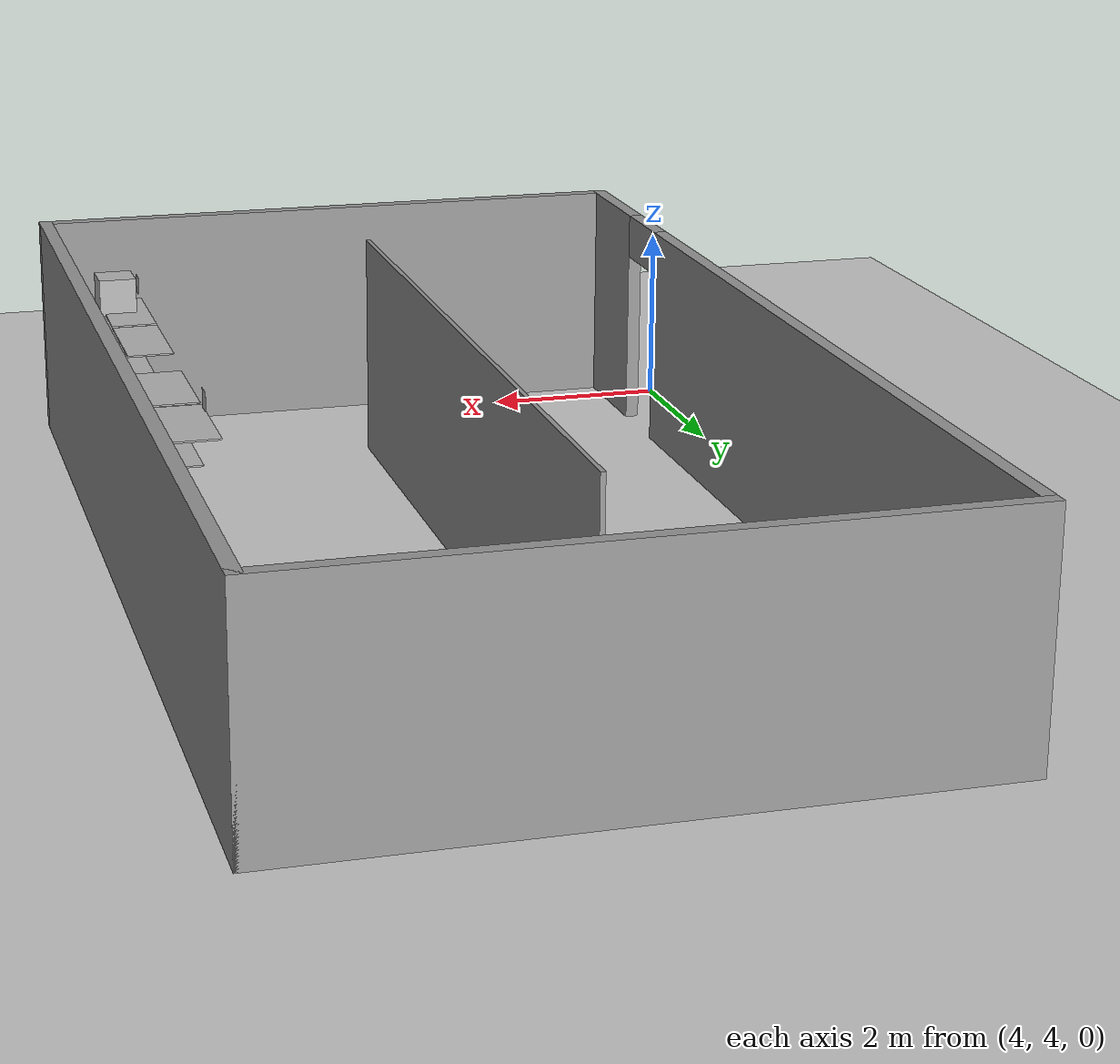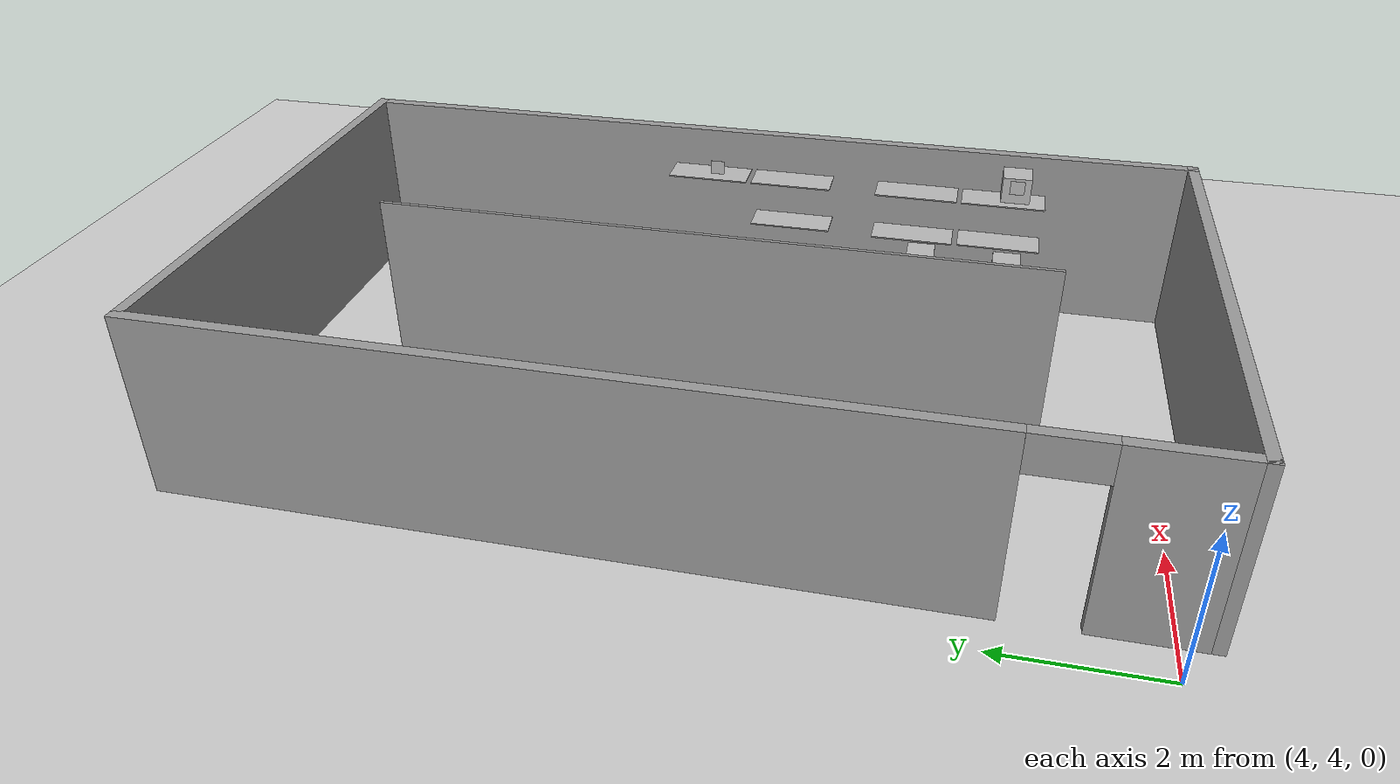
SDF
<sdf version="1.6">
 <world name="default">
  <model name="ground_plane">
   <static>1</static>
   <link name="link">
    <collision name="collision">
     <geometry><plane><normal>0 0 1</normal><size>300 300</size></plane></geometry>
     <surface>
      <contact><collide_bitmask>65535</collide_bitmask></contact>
      <friction><ode><mu>100</mu><mu2>50</mu2></ode></friction>
     </surface>
    </collision>
    <visual name="visual">
     <geometry><plane><normal>0 0 1</normal><size>100 100</size></plane></geometry>
     <material>
      <script><uri>file://media/materials/scripts/gazebo.material</uri><name>Gazebo/Grey</name></script>
     </material>
    </visual>
   </link>
  </model>
  <model name="Plano12">
   <link name="link">
    <gravity>0</gravity>
    <pose>-0.824351 -0.041274 1.91889 0 -0 0.02962</pose>
    <inertial>
     <mass>1e-06</mass>
     <inertia><ixx>0.00058</ixx><ixy>0</ixy><ixz>0</ixz><iyy>0.00058</iyy><iyz>0</iyz><izz>0.00019</izz></inertia>
    </inertial>
    <visual name="visual">
     <geometry><box><size>0.2 1e-06 0.2</size></box></geometry>
     <material>
      <script>
       <uri>model://Plano12/materials/scripts</uri>
       <uri>model://Plano12/materials/textures</uri>
       <name>Plano12/Diffuse</name>
      </script>
      <shader type="pixel"/>
     </material>
     <cast_shadows>0</cast_shadows>
    </visual>
    <collision name="collision">
     <geometry><box><size>0.2 1e-06 0.2</size></box></geometry>
     <surface>
      <friction>
       <ode><mu>1</mu><mu2>1</mu2><fdir1>0 0 0</fdir1><slip1>0</slip1><slip2>0</slip2></ode>
       <torsional>
        <coefficient>1</coefficient>
        <patch_radius>0</patch_radius>
        <surface_radius>0</surface_radius>
        <use_patch_radius>1</use_patch_radius>
        <ode><slip>0</slip></ode>
       </torsional>
      </friction>
      <bounce><restitution_coefficient>0</restitution_coefficient><threshold>1e+06</threshold></bounce>
      <contact>
       <collide_without_contact>0</collide_without_contact>
       <collide_without_contact_bitmask>1</collide_without_contact_bitmask>
       <collide_bitmask>1</collide_bitmask>
       <ode>
        <soft_cfm>0</soft_cfm>
        <soft_erp>0.2</soft_erp>
        <kp>1e+13</kp>
        <kd>1</kd>
        <max_vel>0.01</max_vel>
        <min_depth>0</min_depth>
       </ode>
       <bullet>
        <split_impulse>1</split_impulse>
        <split_impulse_penetration_threshold>-0.01</split_impulse_penetration_threshold>
        <soft_cfm>0</soft_cfm>
        <soft_erp>0.2</soft_erp>
        <kp>1e+13</kp>
        <kd>1</kd>
       </bullet>
      </contact>
     </surface>
    </collision>
   </link>
   <static>0</static>
   <pose>10.7037 9.47205 0.27256 0 0 -1.59709</pose>
  </model>
  <model name="Plano26_0">
   <link name="link">
    <gravity>0</gravity>
    <pose>-0.169184 -0.069468 -0.055235 0 -0 0.01407</pose>
    <inertial>
     <mass>1e-06</mass>
     <inertia><ixx>0.00058</ixx><ixy>0</ixy><ixz>0</ixz><iyy>0.00058</iyy><iyz>0</iyz><izz>0.00019</izz></inertia>
    </inertial>
    <visual name="visual">
     <geometry><box><size>0.2 1e-06 0.2</size></box></geometry>
     <material>
      <script>
       <uri>model://Plano26/materials/scripts</uri>
       <uri>model://Plano26/materials/textures</uri>
       <name>Plano26/Diffuse</name>
      </script>
      <shader type="pixel"/>
     </material>
     <cast_shadows>0</cast_shadows>
    </visual>
    <collision name="collision">
     <geometry><box><size>0.2 1e-06 0.2</size></box></geometry>
     <surface>
      <friction>
       <ode><mu>1</mu><mu2>1</mu2><fdir1>0 0 0</fdir1><slip1>0</slip1><slip2>0</slip2></ode>
       <torsional>
        <coefficient>1</coefficient>
        <patch_radius>0</patch_radius>
        <surface_radius>0</surface_radius>
        <use_patch_radius>1</use_patch_radius>
        <ode><slip>0</slip></ode>
       </torsional>
      </friction>
      <bounce><restitution_coefficient>0</restitution_coefficient><threshold>1e+06</threshold></bounce>
      <contact>
       <collide_without_contact>0</collide_without_contact>
       <collide_without_contact_bitmask>1</collide_without_contact_bitmask>
       <collide_bitmask>1</collide_bitmask>
       <ode>
        <soft_cfm>0</soft_cfm>
        <soft_erp>0.2</soft_erp>
        <kp>1e+13</kp>
        <kd>1</kd>
        <max_vel>0.01</max_vel>
        <min_depth>0</min_depth>
       </ode>
       <bullet>
        <split_impulse>1</split_impulse>
        <split_impulse_penetration_threshold>-0.01</split_impulse_penetration_threshold>
        <soft_cfm>0</soft_cfm>
        <soft_erp>0.2</soft_erp>
        <kp>1e+13</kp>
        <kd>1</kd>
       </bullet>
      </contact>
     </surface>
    </collision>
   </link>
   <static>0</static>
   <pose>10.7205 7.06672 0.90647 0 0 -1.58759</pose>
  </model>
  <model name="Plano26">
   <link name="link">
    <gravity>0</gravity>
    <pose>0.070412 -0.023465 0.724825 0 -0 0</pose>
    <inertial>
     <mass>1e-06</mass>
     <inertia><ixx>0.00058</ixx><ixy>0</ixy><ixz>0</ixz><iyy>0.00058</iyy><iyz>0</iyz><izz>0.00019</izz></inertia>
    </inertial>
    <visual name="visual">
     <geometry><box><size>0.2 1e-06 0.2</size></box></geometry>
     <material>
      <script>
       <uri>model://Plano26/materials/scripts</uri>
       <uri>model://Plano26/materials/textures</uri>
       <name>Plano26/Diffuse</name>
      </script>
      <shader type="pixel"/>
     </material>
     <cast_shadows>0</cast_shadows>
    </visual>
    <collision name="collision">
     <geometry><box><size>0.2 1e-06 0.2</size></box></geometry>
     <surface>
      <friction>
       <ode><mu>1</mu><mu2>1</mu2><fdir1>0 0 0</fdir1><slip1>0</slip1><slip2>0</slip2></ode>
       <torsional>
        <coefficient>1</coefficient>
        <patch_radius>0</patch_radius>
        <surface_radius>0</surface_radius>
        <use_patch_radius>1</use_patch_radius>
        <ode><slip>0</slip></ode>
       </torsional>
      </friction>
      <bounce><restitution_coefficient>0</restitution_coefficient><threshold>1e+06</threshold></bounce>
      <contact>
       <collide_without_contact>0</collide_without_contact>
       <collide_without_contact_bitmask>1</collide_without_contact_bitmask>
       <collide_bitmask>1</collide_bitmask>
       <ode>
        <soft_cfm>0</soft_cfm>
        <soft_erp>0.2</soft_erp>
        <kp>1e+13</kp>
        <kd>1</kd>
        <max_vel>0.01</max_vel>
        <min_depth>0</min_depth>
       </ode>
       <bullet>
        <split_impulse>1</split_impulse>
        <split_impulse_penetration_threshold>-0.01</split_impulse_penetration_threshold>
        <soft_cfm>0</soft_cfm>
        <soft_erp>0.2</soft_erp>
        <kp>1e+13</kp>
        <kd>1</kd>
       </bullet>
      </contact>
     </surface>
    </collision>
   </link>
   <static>0</static>
   <pose>10.7123 6.04698 1.56042 0 0 -1.57945</pose>
  </model>
  <model name="Plano20">
   <link name="link">
    <gravity>0</gravity>
    <pose>0.632324 -0.065211 0.597871 0 -0 0</pose>
    <inertial>
     <mass>1e-06</mass>
     <inertia><ixx>0.00058</ixx><ixy>0</ixy><ixz>0</ixz><iyy>0.00058</iyy><iyz>0</iyz><izz>0.00019</izz></inertia>
    </inertial>
    <visual name="visual">
     <geometry><box><size>0.2 1e-06 0.2</size></box></geometry>
     <material>
      <script>
       <uri>model://Plano20/materials/scripts</uri>
       <uri>model://Plano20/materials/textures</uri>
       <name>Plano20/Diffuse</name>
      </script>
      <shader type="pixel"/>
     </material>
     <cast_shadows>0</cast_shadows>
    </visual>
    <collision name="collision">
     <geometry><box><size>0.2 1e-06 0.2</size></box></geometry>
     <surface>
      <friction>
       <ode><mu>1</mu><mu2>1</mu2><fdir1>0 0 0</fdir1><slip1>0</slip1><slip2>0</slip2></ode>
       <torsional>
        <coefficient>1</coefficient>
        <patch_radius>0</patch_radius>
        <surface_radius>0</surface_radius>
        <use_patch_radius>1</use_patch_radius>
        <ode><slip>0</slip></ode>
       </torsional>
      </friction>
      <bounce><restitution_coefficient>0</restitution_coefficient><threshold>1e+06</threshold></bounce>
      <contact>
       <collide_without_contact>0</collide_without_contact>
       <collide_without_contact_bitmask>1</collide_without_contact_bitmask>
       <collide_bitmask>1</collide_bitmask>
       <ode>
        <soft_cfm>0</soft_cfm>
        <soft_erp>0.2</soft_erp>
        <kp>1e+13</kp>
        <kd>1</kd>
        <max_vel>0.01</max_vel>
        <min_depth>0</min_depth>
       </ode>
       <bullet>
        <split_impulse>1</split_impulse>
        <split_impulse_penetration_threshold>-0.01</split_impulse_penetration_threshold>
        <soft_cfm>0</soft_cfm>
        <soft_erp>0.2</soft_erp>
        <kp>1e+13</kp>
        <kd>1</kd>
       </bullet>
      </contact>
     </surface>
    </collision>
   </link>
   <static>0</static>
   <pose>10.7236 6.60015 0.262989 0 0 -1.59313</pose>
  </model>
  <model name="Untitled_0">
   <link name="Wall_2">
    <pose>-3.33081 4.20959 0 0 0 -1.5708</pose>
    <visual name="Wall_2_Visual">
     <pose>0 0 1.25 0 -0 0</pose>
     <geometry><box><size>8.89987 0.05 2.5</size></box></geometry>
     <material>
      <script><uri>file://media/materials/scripts/gazebo.material</uri><name>Gazebo/Grey</name></script>
      <ambient>1 1 1 1</ambient>
      <shader type="pixel"/>
     </material>
     <meta><layer>0</layer></meta>
    </visual>
    <collision name="Wall_2_Collision">
     <pose>0 0 1.25 0 -0 0</pose>
     <geometry><box><size>8.89987 0.05 2.5</size></box></geometry>
     <surface>
      <friction>
       <ode><mu>1</mu><mu2>1</mu2><fdir1>0 0 0</fdir1><slip1>0</slip1><slip2>0</slip2></ode>
       <torsional>
        <coefficient>1</coefficient>
        <patch_radius>0</patch_radius>
        <surface_radius>0</surface_radius>
        <use_patch_radius>1</use_patch_radius>
        <ode><slip>0</slip></ode>
       </torsional>
      </friction>
      <bounce><restitution_coefficient>0</restitution_coefficient><threshold>1e+06</threshold></bounce>
      <contact>
       <collide_without_contact>0</collide_without_contact>
       <collide_without_contact_bitmask>1</collide_without_contact_bitmask>
       <collide_bitmask>1</collide_bitmask>
       <ode>
        <soft_cfm>0</soft_cfm>
        <soft_erp>0.2</soft_erp>
        <kp>1e+13</kp>
        <kd>1</kd>
        <max_vel>0.01</max_vel>
        <min_depth>0</min_depth>
       </ode>
       <bullet>
        <split_impulse>1</split_impulse>
        <split_impulse_penetration_threshold>-0.01</split_impulse_penetration_threshold>
        <soft_cfm>0</soft_cfm>
        <soft_erp>0.2</soft_erp>
        <kp>1e+13</kp>
        <kd>1</kd>
       </bullet>
      </contact>
     </surface>
    </collision>
   </link>
   <static>1</static>
   <pose>11.266 5.654 0 0 -0 0</pose>
  </model>
  <model name="unit_box_clone_10_clone_clone_clone_clone_clone_0_clone_0">
   <link name="link">
    <inertial>
     <mass>0.00922354</mass>
     <inertia>
      <ixx>0.00104733</ixx>
      <ixy>0</ixy>
      <ixz>0</ixz>
      <iyy>0.000178965</iyy>
      <iyz>0</iyz>
      <izz>0.00122588</izz>
     </inertia>
    </inertial>
    <pose>0.795334 -0.419803 0.148735 -0 -0 -0</pose>
    <visual name="visual">
     <geometry><box><size>0.482252 1.16718 0.016436</size></box></geometry>
     <material>
      <script>
       <uri>model://unit_box/materials/scripts</uri>
       <uri>model://unit_box/materials/textures</uri>
       <name>shelveMat/Diffuse</name>
      </script>
      <shader type="pixel"/>
     </material>
    </visual>
    <collision name="collision">
     <geometry><box><size>0.482252 1.16718 0.016436</size></box></geometry>
     <surface>
      <friction>
       <ode><mu>1</mu><mu2>1</mu2><fdir1>0 0 0</fdir1><slip1>0</slip1><slip2>0</slip2></ode>
       <torsional>
        <coefficient>1</coefficient>
        <patch_radius>0</patch_radius>
        <surface_radius>0</surface_radius>
        <use_patch_radius>1</use_patch_radius>
        <ode><slip>0</slip></ode>
       </torsional>
      </friction>
      <bounce><restitution_coefficient>0</restitution_coefficient><threshold>1e+06</threshold></bounce>
      <contact>
       <collide_without_contact>0</collide_without_contact>
       <collide_without_contact_bitmask>1</collide_without_contact_bitmask>
       <collide_bitmask>1</collide_bitmask>
       <ode>
        <soft_cfm>0</soft_cfm>
        <soft_erp>0.2</soft_erp>
        <kp>1e+13</kp>
        <kd>1</kd>
        <max_vel>0.01</max_vel>
        <min_depth>0</min_depth>
       </ode>
       <bullet>
        <split_impulse>1</split_impulse>
        <split_impulse_penetration_threshold>-0.01</split_impulse_penetration_threshold>
        <soft_cfm>0</soft_cfm>
        <soft_erp>0.2</soft_erp>
        <kp>1e+13</kp>
        <kd>1</kd>
       </bullet>
      </contact>
     </surface>
    </collision>
   </link>
   <static>1</static>
   <pose>10.0679 9.60061 0.509169 0 -1e-06 -0.002445</pose>
  </model>
  <model name="unit_box_clone_10_clone_1_clone">
   <link name="link">
    <inertial>
     <mass>0.00922354</mass>
     <inertia>
      <ixx>0.00104733</ixx>
      <ixy>0</ixy>
      <ixz>0</ixz>
      <iyy>0.000178965</iyy>
      <iyz>0</iyz>
      <izz>0.00122588</izz>
     </inertia>
    </inertial>
    <pose>2.16821 0.157655 0.848426 -0 -0 -0</pose>
    <visual name="visual">
     <geometry><box><size>0.482252 1.16718 0.016436</size></box></geometry>
     <material>
      <script>
       <uri>model://unit_box/materials/scripts</uri>
       <uri>model://unit_box/materials/textures</uri>
       <name>shelveMat/Diffuse</name>
      </script>
      <shader type="pixel"/>
     </material>
    </visual>
    <collision name="collision">
     <geometry><box><size>0.482252 1.16718 0.016436</size></box></geometry>
     <surface>
      <friction>
       <ode><mu>1</mu><mu2>1</mu2><fdir1>0 0 0</fdir1><slip1>0</slip1><slip2>0</slip2></ode>
       <torsional>
        <coefficient>1</coefficient>
        <patch_radius>0</patch_radius>
        <surface_radius>0</surface_radius>
        <use_patch_radius>1</use_patch_radius>
        <ode><slip>0</slip></ode>
       </torsional>
      </friction>
      <bounce><restitution_coefficient>0</restitution_coefficient><threshold>1e+06</threshold></bounce>
      <contact>
       <collide_without_contact>0</collide_without_contact>
       <collide_without_contact_bitmask>1</collide_without_contact_bitmask>
       <collide_bitmask>1</collide_bitmask>
       <ode>
        <soft_cfm>0</soft_cfm>
        <soft_erp>0.2</soft_erp>
        <kp>1e+13</kp>
        <kd>1</kd>
        <max_vel>0.01</max_vel>
        <min_depth>0</min_depth>
       </ode>
       <bullet>
        <split_impulse>1</split_impulse>
        <split_impulse_penetration_threshold>-0.01</split_impulse_penetration_threshold>
        <soft_cfm>0</soft_cfm>
        <soft_erp>0.2</soft_erp>
        <kp>1e+13</kp>
        <kd>1</kd>
       </bullet>
      </contact>
     </surface>
    </collision>
   </link>
   <static>1</static>
   <pose>8.69141 9.03843 0.509172 0 -1e-06 -0.002445</pose>
  </model>
  <model name="unit_box_clone_1_clone">
   <link name="link">
    <inertial>
     <mass>0.00922354</mass>
     <inertia>
      <ixx>0.00104733</ixx>
      <ixy>0</ixy>
      <ixz>0</ixz>
      <iyy>0.000178965</iyy>
      <iyz>0</iyz>
      <izz>0.00122588</izz>
     </inertia>
    </inertial>
    <pose>1.0387 1.15619 1.50314 -0 -0 -0</pose>
    <visual name="visual">
     <geometry><box><size>0.482252 1.16718 0.016436</size></box></geometry>
     <material>
      <script>
       <uri>model://unit_box/materials/scripts</uri>
       <uri>model://unit_box/materials/textures</uri>
       <name>shelveMat/Diffuse</name>
      </script>
      <shader type="pixel"/>
     </material>
    </visual>
    <collision name="collision">
     <geometry><box><size>0.482252 1.16718 0.016436</size></box></geometry>
     <surface>
      <friction>
       <ode><mu>1</mu><mu2>1</mu2><fdir1>0 0 0</fdir1><slip1>0</slip1><slip2>0</slip2></ode>
       <torsional>
        <coefficient>1</coefficient>
        <patch_radius>0</patch_radius>
        <surface_radius>0</surface_radius>
        <use_patch_radius>1</use_patch_radius>
        <ode><slip>0</slip></ode>
       </torsional>
      </friction>
      <bounce><restitution_coefficient>0</restitution_coefficient><threshold>1e+06</threshold></bounce>
      <contact>
       <collide_without_contact>0</collide_without_contact>
       <collide_without_contact_bitmask>1</collide_without_contact_bitmask>
       <collide_bitmask>1</collide_bitmask>
       <ode>
        <soft_cfm>0</soft_cfm>
        <soft_erp>0.2</soft_erp>
        <kp>1e+13</kp>
        <kd>1</kd>
        <max_vel>0.01</max_vel>
        <min_depth>0</min_depth>
       </ode>
       <bullet>
        <split_impulse>1</split_impulse>
        <split_impulse_penetration_threshold>-0.01</split_impulse_penetration_threshold>
        <soft_cfm>0</soft_cfm>
        <soft_erp>0.2</soft_erp>
        <kp>1e+13</kp>
        <kd>1</kd>
       </bullet>
      </contact>
     </surface>
    </collision>
   </link>
   <static>1</static>
   <pose>9.83688 9.29125 0.509169 0 -1e-06 -0.002445</pose>
  </model>
  <model name="unit_box_clone_1">
   <link name="link">
    <inertial>
     <mass>0.00922354</mass>
     <inertia>
      <ixx>0.00104733</ixx>
      <ixy>0</ixy>
      <ixz>0</ixz>
      <iyy>0.000178965</iyy>
      <iyz>0</iyz>
      <izz>0.00122588</izz>
     </inertia>
    </inertial>
    <pose>1.0387 1.15619 1.50314 -0 -0 -0</pose>
    <visual name="visual">
     <geometry><box><size>0.482252 1.16718 0.016436</size></box></geometry>
     <material>
      <script>
       <uri>model://unit_box/materials/scripts</uri>
       <uri>model://unit_box/materials/textures</uri>
       <name>shelveMat/Diffuse</name>
      </script>
      <shader type="pixel"/>
     </material>
    </visual>
    <collision name="collision">
     <geometry><box><size>0.482252 1.16718 0.016436</size></box></geometry>
     <surface>
      <friction>
       <ode><mu>1</mu><mu2>1</mu2><fdir1>0 0 0</fdir1><slip1>0</slip1><slip2>0</slip2></ode>
       <torsional>
        <coefficient>1</coefficient>
        <patch_radius>0</patch_radius>
        <surface_radius>0</surface_radius>
        <use_patch_radius>1</use_patch_radius>
        <ode><slip>0</slip></ode>
       </torsional>
      </friction>
      <bounce><restitution_coefficient>0</restitution_coefficient><threshold>1e+06</threshold></bounce>
      <contact>
       <collide_without_contact>0</collide_without_contact>
       <collide_without_contact_bitmask>1</collide_without_contact_bitmask>
       <collide_bitmask>1</collide_bitmask>
       <ode>
        <soft_cfm>0</soft_cfm>
        <soft_erp>0.2</soft_erp>
        <kp>1e+13</kp>
        <kd>1</kd>
        <max_vel>0.01</max_vel>
        <min_depth>0</min_depth>
       </ode>
       <bullet>
        <split_impulse>1</split_impulse>
        <split_impulse_penetration_threshold>-0.01</split_impulse_penetration_threshold>
        <soft_cfm>0</soft_cfm>
        <soft_erp>0.2</soft_erp>
        <kp>1e+13</kp>
        <kd>1</kd>
       </bullet>
      </contact>
     </surface>
    </collision>
   </link>
   <static>1</static>
   <pose>9.83778 8.05158 0.509169 0 -1e-06 -0.002445</pose>
  </model>
  <model name="CuboQR19">
   <link name="link">
    <pose>-3.06365 0.40851 -2.07539 0.030877 0.017361 -0.698851</pose>
    <inertial>
     <mass>0.39</mass>
     <inertia><ixx>0.00058</ixx><ixy>0</ixy><ixz>0</ixz><iyy>0.00058</iyy><iyz>0</iyz><izz>0.00019</izz></inertia>
    </inertial>
    <visual name="visual">
     <geometry><box><size>0.4 0.4 0.4</size></box></geometry>
     <material>
      <script>
       <uri>model://Caja/materials/scripts</uri>
       <uri>model://Caja/materials/textures</uri>
       <name>Caja/Diffuse</name>
      </script>
      <shader type="pixel"/>
     </material>
    </visual>
    <collision name="collision">
     <geometry><box><size>0.4 0.4 0.4</size></box></geometry>
     <surface>
      <friction>
       <ode><mu>1</mu><mu2>1</mu2><fdir1>0 0 0</fdir1><slip1>0</slip1><slip2>0</slip2></ode>
       <torsional>
        <coefficient>1</coefficient>
        <patch_radius>0</patch_radius>
        <surface_radius>0</surface_radius>
        <use_patch_radius>1</use_patch_radius>
        <ode><slip>0</slip></ode>
       </torsional>
      </friction>
      <bounce><restitution_coefficient>0</restitution_coefficient><threshold>1e+06</threshold></bounce>
      <contact>
       <collide_without_contact>0</collide_without_contact>
       <collide_without_contact_bitmask>1</collide_without_contact_bitmask>
       <collide_bitmask>1</collide_bitmask>
       <ode>
        <soft_cfm>0</soft_cfm>
        <soft_erp>0.2</soft_erp>
        <kp>1e+13</kp>
        <kd>1</kd>
        <max_vel>0.01</max_vel>
        <min_depth>0</min_depth>
       </ode>
       <bullet>
        <split_impulse>1</split_impulse>
        <split_impulse_penetration_threshold>-0.01</split_impulse_penetration_threshold>
        <soft_cfm>0</soft_cfm>
        <soft_erp>0.2</soft_erp>
        <kp>1e+13</kp>
        <kd>1</kd>
       </bullet>
      </contact>
     </surface>
    </collision>
   </link>
   <static>1</static>
   <pose>8.35045 7.68688 0.13587 3.10681 -0.006556 2.4507</pose>
  </model>
  <model name="unit_box_clone_10_clone_3">
   <link name="link">
    <inertial>
     <mass>0.00922354</mass>
     <inertia>
      <ixx>0.00104733</ixx>
      <ixy>0</ixy>
      <ixz>0</ixz>
      <iyy>0.000178965</iyy>
      <iyz>0</iyz>
      <izz>0.00122588</izz>
     </inertia>
    </inertial>
    <pose>2.16822 0.129457 0.833602 -0 -0 -0</pose>
    <visual name="visual">
     <geometry><box><size>0.482252 1.16718 0.016436</size></box></geometry>
     <material>
      <script>
       <uri>model://unit_box/materials/scripts</uri>
       <uri>model://unit_box/materials/textures</uri>
       <name>shelveMat/Diffuse</name>
      </script>
      <shader type="pixel"/>
     </material>
    </visual>
    <collision name="collision">
     <geometry><box><size>0.482252 1.16718 0.016436</size></box></geometry>
     <surface>
      <friction>
       <ode><mu>1</mu><mu2>1</mu2><fdir1>0 0 0</fdir1><slip1>0</slip1><slip2>0</slip2></ode>
       <torsional>
        <coefficient>1</coefficient>
        <patch_radius>0</patch_radius>
        <surface_radius>0</surface_radius>
        <use_patch_radius>1</use_patch_radius>
        <ode><slip>0</slip></ode>
       </torsional>
      </friction>
      <bounce><restitution_coefficient>0</restitution_coefficient><threshold>1e+06</threshold></bounce>
      <contact>
       <collide_without_contact>0</collide_without_contact>
       <collide_without_contact_bitmask>1</collide_without_contact_bitmask>
       <collide_bitmask>1</collide_bitmask>
       <ode>
        <soft_cfm>0</soft_cfm>
        <soft_erp>0.2</soft_erp>
        <kp>1e+13</kp>
        <kd>1</kd>
        <max_vel>0.01</max_vel>
        <min_depth>0</min_depth>
       </ode>
       <bullet>
        <split_impulse>1</split_impulse>
        <split_impulse_penetration_threshold>-0.01</split_impulse_penetration_threshold>
        <soft_cfm>0</soft_cfm>
        <soft_erp>0.2</soft_erp>
        <kp>1e+13</kp>
        <kd>1</kd>
       </bullet>
      </contact>
     </surface>
    </collision>
   </link>
   <static>1</static>
   <pose>8.68197 7.26152 0.509176 0 -1e-06 -0.002445</pose>
  </model>
  <model name="unit_box_clone_2">
   <link name="link">
    <inertial>
     <mass>0.00922354</mass>
     <inertia>
      <ixx>0.00104733</ixx>
      <ixy>0</ixy>
      <ixz>0</ixz>
      <iyy>0.000178965</iyy>
      <iyz>0</iyz>
      <izz>0.00122588</izz>
     </inertia>
    </inertial>
    <pose>1.01378 1.15619 1.51062 -0 -0 -0</pose>
    <visual name="visual">
     <geometry><box><size>0.482252 1.16718 0.016436</size></box></geometry>
     <material>
      <script>
       <uri>model://unit_box/materials/scripts</uri>
       <uri>model://unit_box/materials/textures</uri>
       <name>shelveMat/Diffuse</name>
      </script>
      <shader type="pixel"/>
     </material>
    </visual>
    <collision name="collision">
     <geometry><box><size>0.482252 1.16718 0.016436</size></box></geometry>
     <surface>
      <friction>
       <ode><mu>1</mu><mu2>1</mu2><fdir1>0 0 0</fdir1><slip1>0</slip1><slip2>0</slip2></ode>
       <torsional>
        <coefficient>1</coefficient>
        <patch_radius>0</patch_radius>
        <surface_radius>0</surface_radius>
        <use_patch_radius>1</use_patch_radius>
        <ode><slip>0</slip></ode>
       </torsional>
      </friction>
      <bounce><restitution_coefficient>0</restitution_coefficient><threshold>1e+06</threshold></bounce>
      <contact>
       <collide_without_contact>0</collide_without_contact>
       <collide_without_contact_bitmask>1</collide_without_contact_bitmask>
       <collide_bitmask>1</collide_bitmask>
       <ode>
        <soft_cfm>0</soft_cfm>
        <soft_erp>0.2</soft_erp>
        <kp>1e+13</kp>
        <kd>1</kd>
        <max_vel>0.01</max_vel>
        <min_depth>0</min_depth>
       </ode>
       <bullet>
        <split_impulse>1</split_impulse>
        <split_impulse_penetration_threshold>-0.01</split_impulse_penetration_threshold>
        <soft_cfm>0</soft_cfm>
        <soft_erp>0.2</soft_erp>
        <kp>1e+13</kp>
        <kd>1</kd>
       </bullet>
      </contact>
     </surface>
    </collision>
   </link>
   <static>1</static>
   <pose>9.8308 6.2238 0.509169 0 -1e-06 -0.002445</pose>
  </model>
  <model name="unit_box_clone_2_clone">
   <link name="link">
    <inertial>
     <mass>0.00922354</mass>
     <inertia>
      <ixx>0.00104733</ixx>
      <ixy>0</ixy>
      <ixz>0</ixz>
      <iyy>0.000178965</iyy>
      <iyz>0</iyz>
      <izz>0.00122588</izz>
     </inertia>
    </inertial>
    <pose>1.01378 1.15619 1.51062 -0 -0 -0</pose>
    <visual name="visual">
     <geometry><box><size>0.482252 1.16718 0.016436</size></box></geometry>
     <material>
      <script>
       <uri>model://unit_box/materials/scripts</uri>
       <uri>model://unit_box/materials/textures</uri>
       <name>shelveMat/Diffuse</name>
      </script>
      <shader type="pixel"/>
     </material>
    </visual>
    <collision name="collision">
     <geometry><box><size>0.482252 1.16718 0.016436</size></box></geometry>
     <surface>
      <friction>
       <ode><mu>1</mu><mu2>1</mu2><fdir1>0 0 0</fdir1><slip1>0</slip1><slip2>0</slip2></ode>
       <torsional>
        <coefficient>1</coefficient>
        <patch_radius>0</patch_radius>
        <surface_radius>0</surface_radius>
        <use_patch_radius>1</use_patch_radius>
        <ode><slip>0</slip></ode>
       </torsional>
      </friction>
      <bounce><restitution_coefficient>0</restitution_coefficient><threshold>1e+06</threshold></bounce>
      <contact>
       <collide_without_contact>0</collide_without_contact>
       <collide_without_contact_bitmask>1</collide_without_contact_bitmask>
       <collide_bitmask>1</collide_bitmask>
       <ode>
        <soft_cfm>0</soft_cfm>
        <soft_erp>0.2</soft_erp>
        <kp>1e+13</kp>
        <kd>1</kd>
        <max_vel>0.01</max_vel>
        <min_depth>0</min_depth>
       </ode>
       <bullet>
        <split_impulse>1</split_impulse>
        <split_impulse_penetration_threshold>-0.01</split_impulse_penetration_threshold>
        <soft_cfm>0</soft_cfm>
        <soft_erp>0.2</soft_erp>
        <kp>1e+13</kp>
        <kd>1</kd>
       </bullet>
      </contact>
     </surface>
    </collision>
   </link>
   <static>1</static>
   <pose>9.8232 4.99093 0.509169 0 -1e-06 -0.002445</pose>
  </model>
  <model name="unit_box_clone_10_clone_4">
   <link name="link">
    <inertial>
     <mass>0.00922354</mass>
     <inertia>
      <ixx>0.00104733</ixx>
      <ixy>0</ixy>
      <ixz>0</ixz>
      <iyy>0.000178965</iyy>
      <iyz>0</iyz>
      <izz>0.00122588</izz>
     </inertia>
    </inertial>
    <pose>2.15023 0.157655 0.848426 0 0 -0.007049</pose>
    <visual name="visual">
     <geometry><box><size>0.482252 1.16718 0.016436</size></box></geometry>
     <material>
      <script>
       <uri>model://unit_box/materials/scripts</uri>
       <uri>model://unit_box/materials/textures</uri>
       <name>shelveMat/Diffuse</name>
      </script>
      <shader type="pixel"/>
     </material>
    </visual>
    <collision name="collision">
     <geometry><box><size>0.482252 1.16718 0.016436</size></box></geometry>
     <surface>
      <friction>
       <ode><mu>1</mu><mu2>1</mu2><fdir1>0 0 0</fdir1><slip1>0</slip1><slip2>0</slip2></ode>
       <torsional>
        <coefficient>1</coefficient>
        <patch_radius>0</patch_radius>
        <surface_radius>0</surface_radius>
        <use_patch_radius>1</use_patch_radius>
        <ode><slip>0</slip></ode>
       </torsional>
      </friction>
      <bounce><restitution_coefficient>0</restitution_coefficient><threshold>1e+06</threshold></bounce>
      <contact>
       <collide_without_contact>0</collide_without_contact>
       <collide_without_contact_bitmask>1</collide_without_contact_bitmask>
       <collide_bitmask>1</collide_bitmask>
       <ode>
        <soft_cfm>0</soft_cfm>
        <soft_erp>0.2</soft_erp>
        <kp>1e+13</kp>
        <kd>1</kd>
        <max_vel>0.01</max_vel>
        <min_depth>0</min_depth>
       </ode>
       <bullet>
        <split_impulse>1</split_impulse>
        <split_impulse_penetration_threshold>-0.01</split_impulse_penetration_threshold>
        <soft_cfm>0</soft_cfm>
        <soft_erp>0.2</soft_erp>
        <kp>1e+13</kp>
        <kd>1</kd>
       </bullet>
      </contact>
     </surface>
    </collision>
   </link>
   <static>1</static>
   <pose>8.67789 5.99045 0.509172 0 -1e-06 -0.002445</pose>
  </model>
  <model name="unit_box_clone_10_clone_clone_clone_clone_clone_0_clone_0_clone_1">
   <link name="link">
    <inertial>
     <mass>0.00922354</mass>
     <inertia>
      <ixx>0.00104733</ixx>
      <ixy>0</ixy>
      <ixz>0</ixz>
      <iyy>0.000178965</iyy>
      <iyz>0</iyz>
      <izz>0.00122588</izz>
     </inertia>
    </inertial>
    <pose>0.795468 -0.406723 0.148735 0 0 -0.010244</pose>
    <visual name="visual">
     <geometry><box><size>0.482252 1.16718 0.016436</size></box></geometry>
     <material>
      <script>
       <uri>model://unit_box/materials/scripts</uri>
       <uri>model://unit_box/materials/textures</uri>
       <name>shelveMat/Diffuse</name>
      </script>
      <shader type="pixel"/>
     </material>
    </visual>
    <collision name="collision">
     <geometry><box><size>0.482252 1.16718 0.016436</size></box></geometry>
     <surface>
      <friction>
       <ode><mu>1</mu><mu2>1</mu2><fdir1>0 0 0</fdir1><slip1>0</slip1><slip2>0</slip2></ode>
       <torsional>
        <coefficient>1</coefficient>
        <patch_radius>0</patch_radius>
        <surface_radius>0</surface_radius>
        <use_patch_radius>1</use_patch_radius>
        <ode><slip>0</slip></ode>
       </torsional>
      </friction>
      <bounce><restitution_coefficient>0</restitution_coefficient><threshold>1e+06</threshold></bounce>
      <contact>
       <collide_without_contact>0</collide_without_contact>
       <collide_without_contact_bitmask>1</collide_without_contact_bitmask>
       <collide_bitmask>1</collide_bitmask>
       <ode>
        <soft_cfm>0</soft_cfm>
        <soft_erp>0.2</soft_erp>
        <kp>1e+13</kp>
        <kd>1</kd>
        <max_vel>0.01</max_vel>
        <min_depth>0</min_depth>
       </ode>
       <bullet>
        <split_impulse>1</split_impulse>
        <split_impulse_penetration_threshold>-0.01</split_impulse_penetration_threshold>
        <soft_cfm>0</soft_cfm>
        <soft_erp>0.2</soft_erp>
        <kp>1e+13</kp>
        <kd>1</kd>
       </bullet>
      </contact>
     </surface>
    </collision>
   </link>
   <static>1</static>
   <pose>10.0424 6.5362 0.509169 0 -1e-06 -0.002445</pose>
  </model>
  <model name="CuboQR20">
   <link name="link">
    <pose>-0.756188 -0.628783 0.186951 -0.030889 0.015574 0.01146</pose>
    <inertial>
     <mass>0.39</mass>
     <inertia><ixx>0.00058</ixx><ixy>0</ixy><ixz>0</ixz><iyy>0.00058</iyy><iyz>0</iyz><izz>0.00019</izz></inertia>
    </inertial>
    <visual name="visual">
     <geometry><box><size>0.4 0.4 0.4</size></box></geometry>
     <material>
      <script>
       <uri>model://Caja/materials/scripts</uri>
       <uri>model://Caja/materials/textures</uri>
       <name>Caja/Diffuse</name>
      </script>
      <shader type="pixel"/>
     </material>
    </visual>
    <collision name="collision">
     <geometry><box><size>0.4 0.4 0.4</size></box></geometry>
     <surface>
      <friction>
       <ode><mu>1</mu><mu2>1</mu2><fdir1>0 0 0</fdir1><slip1>0</slip1><slip2>0</slip2></ode>
       <torsional>
        <coefficient>1</coefficient>
        <patch_radius>0</patch_radius>
        <surface_radius>0</surface_radius>
        <use_patch_radius>1</use_patch_radius>
        <ode><slip>0</slip></ode>
       </torsional>
      </friction>
      <bounce><restitution_coefficient>0</restitution_coefficient><threshold>1e+06</threshold></bounce>
      <contact>
       <collide_without_contact>0</collide_without_contact>
       <collide_without_contact_bitmask>1</collide_without_contact_bitmask>
       <collide_bitmask>1</collide_bitmask>
       <ode>
        <soft_cfm>0</soft_cfm>
        <soft_erp>0.2</soft_erp>
        <kp>1e+13</kp>
        <kd>1</kd>
        <max_vel>0.01</max_vel>
        <min_depth>0</min_depth>
       </ode>
       <bullet>
        <split_impulse>1</split_impulse>
        <split_impulse_penetration_threshold>-0.01</split_impulse_penetration_threshold>
        <soft_cfm>0</soft_cfm>
        <soft_erp>0.2</soft_erp>
        <kp>1e+13</kp>
        <kd>1</kd>
       </bullet>
      </contact>
     </surface>
    </collision>
   </link>
   <static>1</static>
   <pose>10.702 6.61016 0.109433 -0.635163 1.55144 -0.676501</pose>
  </model>
  <model name="unit_box_clone_10_clone_clone_clone_clone_clone_0_clone_0_clone_0">
   <link name="link">
    <inertial>
     <mass>0.00922354</mass>
     <inertia>
      <ixx>0.00104733</ixx>
      <ixy>0</ixy>
      <ixz>0</ixz>
      <iyy>0.000178965</iyy>
      <iyz>0</iyz>
      <izz>0.00122588</izz>
     </inertia>
    </inertial>
    <pose>0.795244 -0.439465 0.148735 0 -0 -0.00766</pose>
    <visual name="visual">
     <geometry><box><size>0.482252 1.16718 0.016436</size></box></geometry>
     <material>
      <script>
       <uri>model://unit_box/materials/scripts</uri>
       <uri>model://unit_box/materials/textures</uri>
       <name>shelveMat/Diffuse</name>
      </script>
      <shader type="pixel"/>
     </material>
    </visual>
    <collision name="collision">
     <geometry><box><size>0.482252 1.16718 0.016436</size></box></geometry>
     <surface>
      <friction>
       <ode><mu>1</mu><mu2>1</mu2><fdir1>0 0 0</fdir1><slip1>0</slip1><slip2>0</slip2></ode>
       <torsional>
        <coefficient>1</coefficient>
        <patch_radius>0</patch_radius>
        <surface_radius>0</surface_radius>
        <use_patch_radius>1</use_patch_radius>
        <ode><slip>0</slip></ode>
       </torsional>
      </friction>
      <bounce><restitution_coefficient>0</restitution_coefficient><threshold>1e+06</threshold></bounce>
      <contact>
       <collide_without_contact>0</collide_without_contact>
       <collide_without_contact_bitmask>1</collide_without_contact_bitmask>
       <collide_bitmask>1</collide_bitmask>
       <ode>
        <soft_cfm>0</soft_cfm>
        <soft_erp>0.2</soft_erp>
        <kp>1e+13</kp>
        <kd>1</kd>
        <max_vel>0.01</max_vel>
        <min_depth>0</min_depth>
       </ode>
       <bullet>
        <split_impulse>1</split_impulse>
        <split_impulse_penetration_threshold>-0.01</split_impulse_penetration_threshold>
        <soft_cfm>0</soft_cfm>
        <soft_erp>0.2</soft_erp>
        <kp>1e+13</kp>
        <kd>1</kd>
       </bullet>
      </contact>
     </surface>
    </collision>
   </link>
   <static>1</static>
   <pose>10.068 7.81704 0.509169 0 -1e-06 -0.002445</pose>
  </model>
  <model name="CuboQR26">
   <link name="link">
    <pose>0.696793 0.176883 0.326352 0.050369 0 0.010192</pose>
    <inertial>
     <mass>0.39</mass>
     <inertia><ixx>0.00058</ixx><ixy>0</ixy><ixz>0</ixz><iyy>0.00058</iyy><iyz>0</iyz><izz>0.00019</izz></inertia>
    </inertial>
    <visual name="visual">
     <geometry><box><size>0.4 0.4 0.4</size></box></geometry>
     <material>
      <script>
       <uri>model://Caja/materials/scripts</uri>
       <uri>model://Caja/materials/textures</uri>
       <name>Caja/Diffuse</name>
      </script>
      <shader type="pixel"/>
     </material>
    </visual>
    <collision name="collision">
     <geometry><box><size>0.4 0.4 0.4</size></box></geometry>
     <surface>
      <friction>
       <ode><mu>1</mu><mu2>1</mu2><fdir1>0 0 0</fdir1><slip1>0</slip1><slip2>0</slip2></ode>
       <torsional>
        <coefficient>1</coefficient>
        <patch_radius>0</patch_radius>
        <surface_radius>0</surface_radius>
        <use_patch_radius>1</use_patch_radius>
        <ode><slip>0</slip></ode>
       </torsional>
      </friction>
      <bounce><restitution_coefficient>0</restitution_coefficient><threshold>1e+06</threshold></bounce>
      <contact>
       <collide_without_contact>0</collide_without_contact>
       <collide_without_contact_bitmask>1</collide_without_contact_bitmask>
       <collide_bitmask>1</collide_bitmask>
       <ode>
        <soft_cfm>0</soft_cfm>
        <soft_erp>0.2</soft_erp>
        <kp>1e+13</kp>
        <kd>1</kd>
        <max_vel>0.01</max_vel>
        <min_depth>0</min_depth>
       </ode>
       <bullet>
        <split_impulse>1</split_impulse>
        <split_impulse_penetration_threshold>-0.01</split_impulse_penetration_threshold>
        <soft_cfm>0</soft_cfm>
        <soft_erp>0.2</soft_erp>
        <kp>1e+13</kp>
        <kd>1</kd>
       </bullet>
      </contact>
     </surface>
    </collision>
   </link>
   <static>1</static>
   <pose>11.1813 7.05415 0.188905 1.57131 -1.56061 -1.6155</pose>
  </model>
  <model name="qrware">
   <link name="Wall_2">
    <pose>-3.425 0 0 0 -0 1.5708</pose>
    <visual name="Wall_2_Visual_0">
     <pose>-5.51907 0 1.25 0 -0 0</pose>
     <geometry><box><size>1.46186 0.15 2.5</size></box></geometry>
     <material>
      <script><uri>file://media/materials/scripts/gazebo.material</uri><name>Gazebo/Grey</name></script>
      <ambient>1 1 1 1</ambient>
      <shader type="pixel"/>
     </material>
     <meta><layer>0</layer></meta>
    </visual>
    <visual name="Wall_2_Visual_1">
     <pose>1.18093 0 1.25 0 -0 0</pose>
     <geometry><box><size>10.1381 0.15 2.5</size></box></geometry>
     <material>
      <script><uri>file://media/materials/scripts/gazebo.material</uri><name>Gazebo/Grey</name></script>
      <ambient>1 1 1 1</ambient>
      <shader type="pixel"/>
     </material>
     <meta><layer>0</layer></meta>
    </visual>
    <visual name="Wall_2_Visual_2">
     <pose>-4.33814 0 2.25 0 -0 0</pose>
     <geometry><box><size>0.9 0.15 0.5</size></box></geometry>
     <material>
      <script><uri>file://media/materials/scripts/gazebo.material</uri><name>Gazebo/Grey</name></script>
      <ambient>1 1 1 1</ambient>
      <shader type="pixel"/>
     </material>
     <meta><layer>0</layer></meta>
    </visual>
    <collision name="Wall_2_Collision_0">
     <pose>-5.51907 0 1.25 0 -0 0</pose>
     <geometry><box><size>1.46186 0.15 2.5</size></box></geometry>
     <surface>
      <friction>
       <ode><mu>1</mu><mu2>1</mu2><fdir1>0 0 0</fdir1><slip1>0</slip1><slip2>0</slip2></ode>
       <torsional>
        <coefficient>1</coefficient>
        <patch_radius>0</patch_radius>
        <surface_radius>0</surface_radius>
        <use_patch_radius>1</use_patch_radius>
        <ode><slip>0</slip></ode>
       </torsional>
      </friction>
      <bounce><restitution_coefficient>0</restitution_coefficient><threshold>1e+06</threshold></bounce>
      <contact>
       <collide_without_contact>0</collide_without_contact>
       <collide_without_contact_bitmask>1</collide_without_contact_bitmask>
       <collide_bitmask>1</collide_bitmask>
       <ode>
        <soft_cfm>0</soft_cfm>
        <soft_erp>0.2</soft_erp>
        <kp>1e+13</kp>
        <kd>1</kd>
        <max_vel>0.01</max_vel>
        <min_depth>0</min_depth>
       </ode>
       <bullet>
        <split_impulse>1</split_impulse>
        <split_impulse_penetration_threshold>-0.01</split_impulse_penetration_threshold>
        <soft_cfm>0</soft_cfm>
        <soft_erp>0.2</soft_erp>
        <kp>1e+13</kp>
        <kd>1</kd>
       </bullet>
      </contact>
     </surface>
    </collision>
    <collision name="Wall_2_Collision_1">
     <pose>1.18093 0 1.25 0 -0 0</pose>
     <geometry><box><size>10.1381 0.15 2.5</size></box></geometry>
     <surface>
      <friction>
       <ode><mu>1</mu><mu2>1</mu2><fdir1>0 0 0</fdir1><slip1>0</slip1><slip2>0</slip2></ode>
       <torsional>
        <coefficient>1</coefficient>
        <patch_radius>0</patch_radius>
        <surface_radius>0</surface_radius>
        <use_patch_radius>1</use_patch_radius>
        <ode><slip>0</slip></ode>
       </torsional>
      </friction>
      <bounce><restitution_coefficient>0</restitution_coefficient><threshold>1e+06</threshold></bounce>
      <contact>
       <collide_without_contact>0</collide_without_contact>
       <collide_without_contact_bitmask>1</collide_without_contact_bitmask>
       <collide_bitmask>1</collide_bitmask>
       <ode>
        <soft_cfm>0</soft_cfm>
        <soft_erp>0.2</soft_erp>
        <kp>1e+13</kp>
        <kd>1</kd>
        <max_vel>0.01</max_vel>
        <min_depth>0</min_depth>
       </ode>
       <bullet>
        <split_impulse>1</split_impulse>
        <split_impulse_penetration_threshold>-0.01</split_impulse_penetration_threshold>
        <soft_cfm>0</soft_cfm>
        <soft_erp>0.2</soft_erp>
        <kp>1e+13</kp>
        <kd>1</kd>
       </bullet>
      </contact>
     </surface>
    </collision>
    <collision name="Wall_2_Collision_2">
     <pose>-4.33814 0 2.25 0 -0 0</pose>
     <geometry><box><size>0.9 0.15 0.5</size></box></geometry>
     <surface>
      <friction>
       <ode><mu>1</mu><mu2>1</mu2><fdir1>0 0 0</fdir1><slip1>0</slip1><slip2>0</slip2></ode>
       <torsional>
        <coefficient>1</coefficient>
        <patch_radius>0</patch_radius>
        <surface_radius>0</surface_radius>
        <use_patch_radius>1</use_patch_radius>
        <ode><slip>0</slip></ode>
       </torsional>
      </friction>
      <bounce><restitution_coefficient>0</restitution_coefficient><threshold>1e+06</threshold></bounce>
      <contact>
       <collide_without_contact>0</collide_without_contact>
       <collide_without_contact_bitmask>1</collide_without_contact_bitmask>
       <collide_bitmask>1</collide_bitmask>
       <ode>
        <soft_cfm>0</soft_cfm>
        <soft_erp>0.2</soft_erp>
        <kp>1e+13</kp>
        <kd>1</kd>
        <max_vel>0.01</max_vel>
        <min_depth>0</min_depth>
       </ode>
       <bullet>
        <split_impulse>1</split_impulse>
        <split_impulse_penetration_threshold>-0.01</split_impulse_penetration_threshold>
        <soft_cfm>0</soft_cfm>
        <soft_erp>0.2</soft_erp>
        <kp>1e+13</kp>
        <kd>1</kd>
       </bullet>
      </contact>
     </surface>
    </collision>
   </link>
   <link name="Wall_3">
    <pose>0 6.175 0 0 -0 0</pose>
    <visual name="Wall_3_Visual">
     <pose>0 0 1.25 0 -0 0</pose>
     <geometry><box><size>7 0.15 2.5</size></box></geometry>
     <material>
      <script><uri>file://media/materials/scripts/gazebo.material</uri><name>Gazebo/Grey</name></script>
      <ambient>1 1 1 1</ambient>
      <shader type="pixel"/>
     </material>
     <meta><layer>0</layer></meta>
    </visual>
    <collision name="Wall_3_Collision">
     <pose>0 0 1.25 0 -0 0</pose>
     <geometry><box><size>7 0.15 2.5</size></box></geometry>
     <surface>
      <friction>
       <ode><mu>1</mu><mu2>1</mu2><fdir1>0 0 0</fdir1><slip1>0</slip1><slip2>0</slip2></ode>
       <torsional>
        <coefficient>1</coefficient>
        <patch_radius>0</patch_radius>
        <surface_radius>0</surface_radius>
        <use_patch_radius>1</use_patch_radius>
        <ode><slip>0</slip></ode>
       </torsional>
      </friction>
      <bounce><restitution_coefficient>0</restitution_coefficient><threshold>1e+06</threshold></bounce>
      <contact>
       <collide_without_contact>0</collide_without_contact>
       <collide_without_contact_bitmask>1</collide_without_contact_bitmask>
       <collide_bitmask>1</collide_bitmask>
       <ode>
        <soft_cfm>0</soft_cfm>
        <soft_erp>0.2</soft_erp>
        <kp>1e+13</kp>
        <kd>1</kd>
        <max_vel>0.01</max_vel>
        <min_depth>0</min_depth>
       </ode>
       <bullet>
        <split_impulse>1</split_impulse>
        <split_impulse_penetration_threshold>-0.01</split_impulse_penetration_threshold>
        <soft_cfm>0</soft_cfm>
        <soft_erp>0.2</soft_erp>
        <kp>1e+13</kp>
        <kd>1</kd>
       </bullet>
      </contact>
     </surface>
    </collision>
   </link>
   <link name="Wall_4">
    <pose>3.425 0 0 0 0 -1.5708</pose>
    <visual name="Wall_4_Visual">
     <pose>0 0 1.25 0 -0 0</pose>
     <geometry><box><size>12.5 0.15 2.5</size></box></geometry>
     <material>
      <script><uri>file://media/materials/scripts/gazebo.material</uri><name>Gazebo/Grey</name></script>
      <ambient>1 1 1 1</ambient>
      <shader type="pixel"/>
     </material>
     <meta><layer>0</layer></meta>
    </visual>
    <collision name="Wall_4_Collision">
     <pose>0 0 1.25 0 -0 0</pose>
     <geometry><box><size>12.5 0.15 2.5</size></box></geometry>
     <surface>
      <friction>
       <ode><mu>1</mu><mu2>1</mu2><fdir1>0 0 0</fdir1><slip1>0</slip1><slip2>0</slip2></ode>
       <torsional>
        <coefficient>1</coefficient>
        <patch_radius>0</patch_radius>
        <surface_radius>0</surface_radius>
        <use_patch_radius>1</use_patch_radius>
        <ode><slip>0</slip></ode>
       </torsional>
      </friction>
      <bounce><restitution_coefficient>0</restitution_coefficient><threshold>1e+06</threshold></bounce>
      <contact>
       <collide_without_contact>0</collide_without_contact>
       <collide_without_contact_bitmask>1</collide_without_contact_bitmask>
       <collide_bitmask>1</collide_bitmask>
       <ode>
        <soft_cfm>0</soft_cfm>
        <soft_erp>0.2</soft_erp>
        <kp>1e+13</kp>
        <kd>1</kd>
        <max_vel>0.01</max_vel>
        <min_depth>0</min_depth>
       </ode>
       <bullet>
        <split_impulse>1</split_impulse>
        <split_impulse_penetration_threshold>-0.01</split_impulse_penetration_threshold>
        <soft_cfm>0</soft_cfm>
        <soft_erp>0.2</soft_erp>
        <kp>1e+13</kp>
        <kd>1</kd>
       </bullet>
      </contact>
     </surface>
    </collision>
   </link>
   <link name="Wall_6">
    <pose>0 -6.175 0 0 -0 0</pose>
    <visual name="Wall_6_Visual">
     <pose>0 0 1.25 0 -0 0</pose>
     <geometry><box><size>7 0.15 2.5</size></box></geometry>
     <material>
      <script><uri>file://media/materials/scripts/gazebo.material</uri><name>Gazebo/Grey</name></script>
      <ambient>1 1 1 1</ambient>
      <shader type="pixel"/>
     </material>
     <meta><layer>0</layer></meta>
    </visual>
    <collision name="Wall_6_Collision">
     <pose>0 0 1.25 0 -0 0</pose>
     <geometry><box><size>7 0.15 2.5</size></box></geometry>
     <surface>
      <friction>
       <ode><mu>1</mu><mu2>1</mu2><fdir1>0 0 0</fdir1><slip1>0</slip1><slip2>0</slip2></ode>
       <torsional>
        <coefficient>1</coefficient>
        <patch_radius>0</patch_radius>
        <surface_radius>0</surface_radius>
        <use_patch_radius>1</use_patch_radius>
        <ode><slip>0</slip></ode>
       </torsional>
      </friction>
      <bounce><restitution_coefficient>0</restitution_coefficient><threshold>1e+06</threshold></bounce>
      <contact>
       <collide_without_contact>0</collide_without_contact>
       <collide_without_contact_bitmask>1</collide_without_contact_bitmask>
       <collide_bitmask>1</collide_bitmask>
       <ode>
        <soft_cfm>0</soft_cfm>
        <soft_erp>0.2</soft_erp>
        <kp>1e+13</kp>
        <kd>1</kd>
        <max_vel>0.01</max_vel>
        <min_depth>0</min_depth>
       </ode>
       <bullet>
        <split_impulse>1</split_impulse>
        <split_impulse_penetration_threshold>-0.01</split_impulse_penetration_threshold>
        <soft_cfm>0</soft_cfm>
        <soft_erp>0.2</soft_erp>
        <kp>1e+13</kp>
        <kd>1</kd>
       </bullet>
      </contact>
     </surface>
    </collision>
   </link>
   <static>1</static>
   <pose>7.98806 9.76227 0 0 -0 0</pose>
  </model>
 </world>
</sdf>
